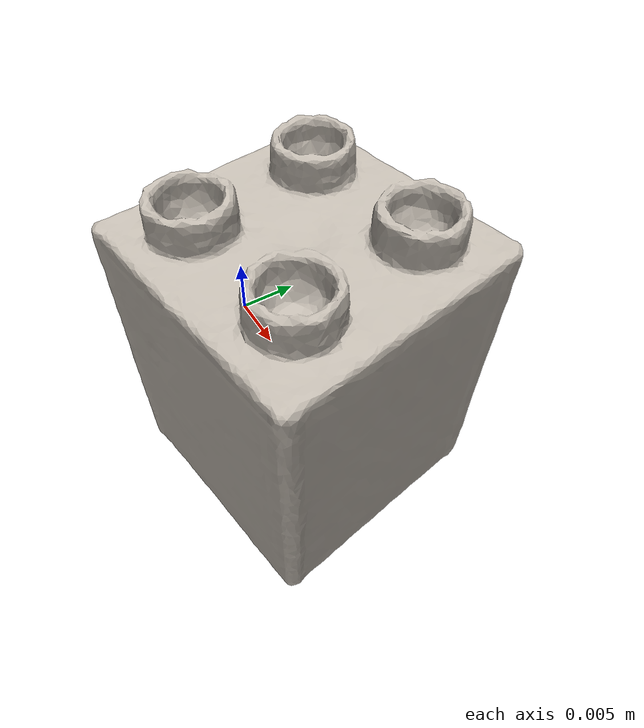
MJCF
<mujoco model="bread">
  <asset>
    <mesh file="nontextured.stl" name="obj_mesh" scale="0.8 0.8 0.8"/>
    <texture file="../../../../../textures/bread.png" type="2d" name="tex-bread" />
    <material name="bread" reflectance="0.7" texrepeat="15 15" texture="tex-bread" texuniform="true"/>
  </asset>
  <worldbody>
    <body>
      <body name="collision">
        <geom pos="0.02002 0.020790500000000003 -0.021254" mesh="obj_mesh" type="mesh" solimp="0.998 0.998 0.001" solref="0.001 1" density="50" friction="0.95 0.3 0.1"  material="bread" group="1" condim="4"/>
      </body>
      <body name="visual">
        <geom pos="0.02002 0.020790500000000003 -0.021254" mesh="obj_mesh" type="mesh" material="bread"  conaffinity="0" contype="0"  group="0" mass="0.0001"/>
        <geom pos="0.02002 0.020790500000000003 -0.021254" mesh="obj_mesh" type="mesh" material="bread"  conaffinity="0" contype="0"  group="1" mass="0.0001"/>
      </body>
      <site rgba="0 0 0 0" size="0.005" pos="0 0 -0.021658" name="bottom_site"/>
      <site rgba="0 0 0 0" size="0.005" pos="0 0 0.021658" name="top_site"/>
      <site rgba="0 0 0 0" size="0.005" pos="0.018444 0.0183795 0.021658" name="horizontal_radius_site"/>
    </body>
  </worldbody>
</mujoco>
